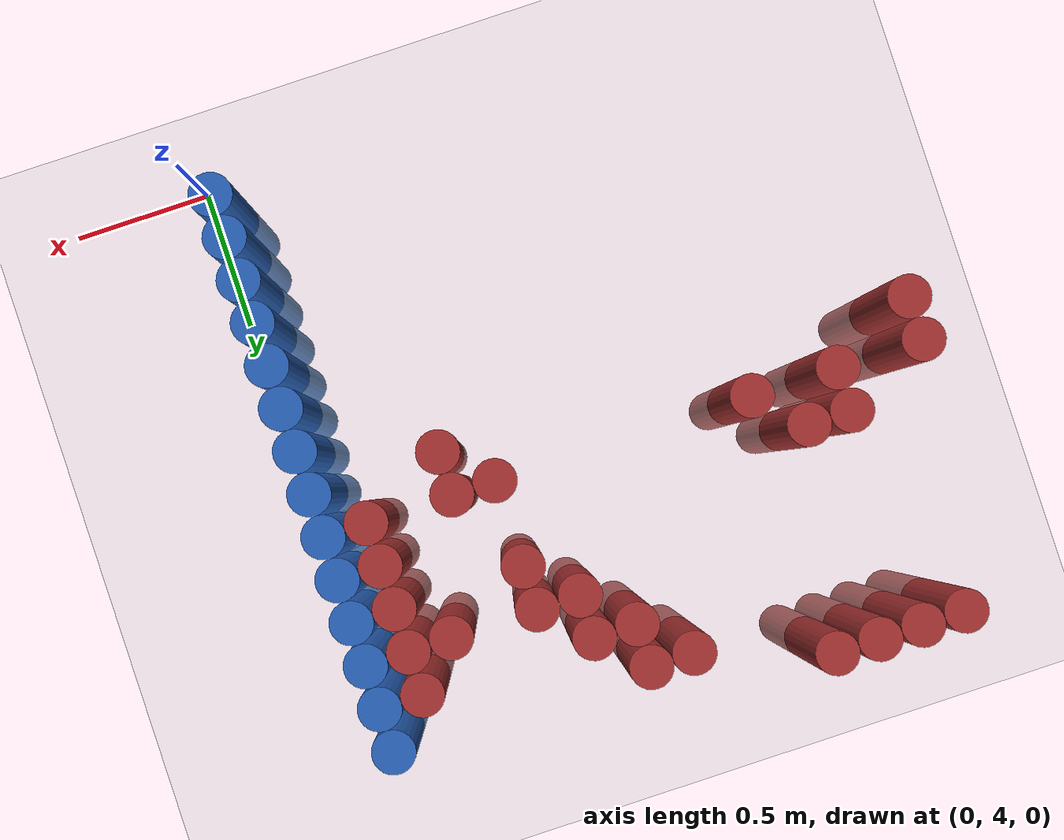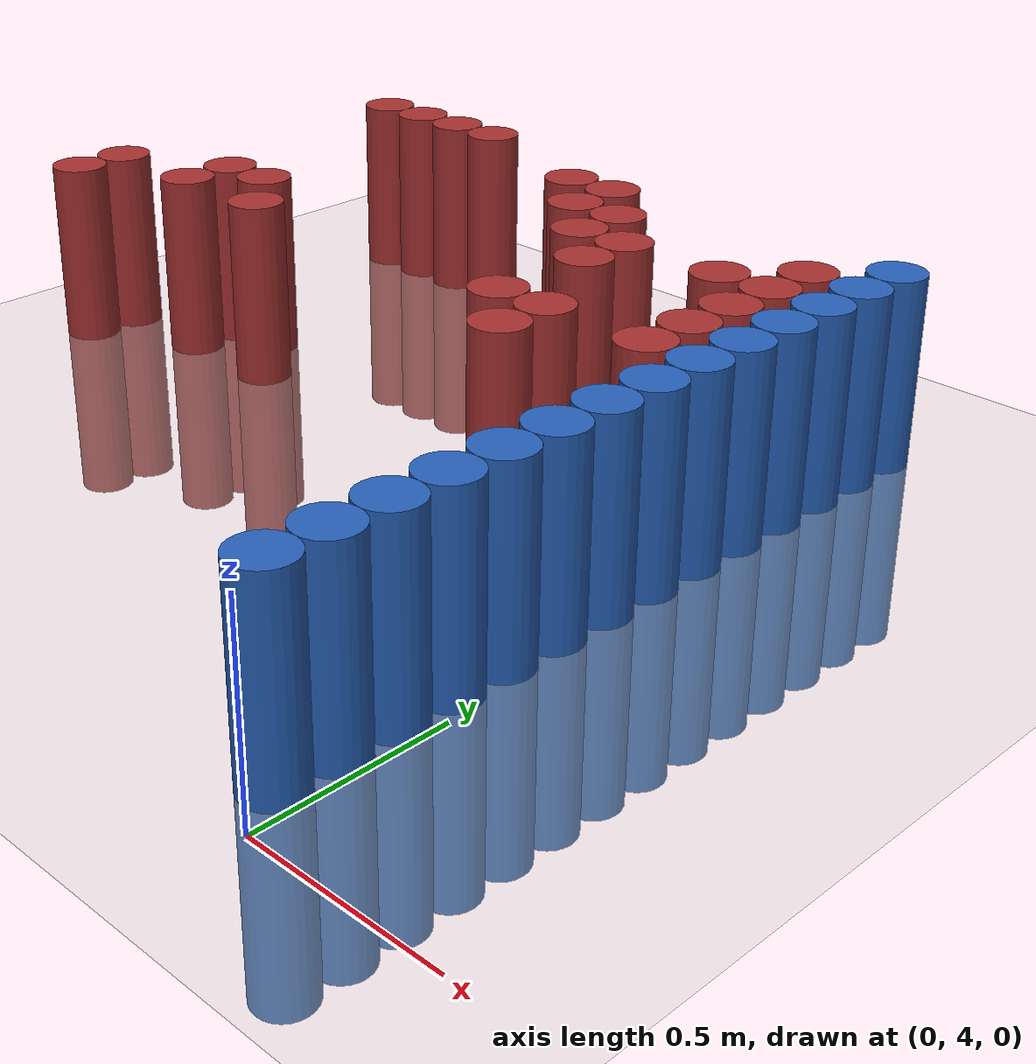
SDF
<sdf version="1.6">
 <world name="default">
  <model name="ground_plane">
   <static>1</static>
   <link name="link">
    <collision name="collision">
     <geometry><plane><normal>0 0 1</normal><size>100 100</size></plane></geometry>
     <surface><friction><ode><mu>100</mu><mu2>50</mu2></ode></friction></surface>
    </collision>
    <visual name="visual">
     <cast_shadows>0</cast_shadows>
     <geometry><plane><normal>0 0 1</normal><size>100 100</size></plane></geometry>
     <material>
      <script><uri>file://media/materials/scripts/gazebo.material</uri><name>Gazebo/Grey</name></script>
     </material>
    </visual>
   </link>
  </model>
  <model name="unit_cylinder_82">
   <static>1</static>
   <pose>-0.075000 4.125000 0.000000 0.000000 0.000000 0.000000</pose>
   <link name="link">
    <inertial>
     <mass>1</mass>
     <inertia><ixx>0.145833</ixx><ixy>0</ixy><ixz>0</ixz><iyy>0.145833</iyy><iyz>0</iyz><izz>0.125</izz></inertia>
    </inertial>
    <collision name="collision">
     <geometry><cylinder><radius>0.075000</radius><length>1</length></cylinder></geometry>
    </collision>
    <visual name="visual">
     <geometry><cylinder><radius>0.075000</radius><length>1</length></cylinder></geometry>
     <material>
      <ambient>0.152000 0.379000 0.720000 1</ambient>
      <diffuse>0.152000 0.379000 0.720000 1</diffuse>
     </material>
     <material>
      <script><name>Gazebo/Grey</name><uri>file://media/materials/scripts/gazebo.material</uri></script>
     </material>
    </visual>
    <sensor name="sensor_contact" type="contact"><contact><collision>collision</collision></contact></sensor>
   </link>
   <plugin filename="gz-sim-touchplugin-system" name="gz::sim::systems::TouchPlugin">
    <target>robot</target>
    <namespace>robot</namespace>
    <time>0.001</time>
    <enabled>true</enabled>
   </plugin>
  </model>
  <model name="unit_cylinder_84">
   <static>1</static>
   <pose>-0.075000 4.275000 0.000000 0.000000 0.000000 0.000000</pose>
   <link name="link">
    <inertial>
     <mass>1</mass>
     <inertia><ixx>0.145833</ixx><ixy>0</ixy><ixz>0</ixz><iyy>0.145833</iyy><iyz>0</iyz><izz>0.125</izz></inertia>
    </inertial>
    <collision name="collision">
     <geometry><cylinder><radius>0.075000</radius><length>1</length></cylinder></geometry>
    </collision>
    <visual name="visual">
     <geometry><cylinder><radius>0.075000</radius><length>1</length></cylinder></geometry>
     <material>
      <ambient>0.152000 0.379000 0.720000 1</ambient>
      <diffuse>0.152000 0.379000 0.720000 1</diffuse>
     </material>
     <material>
      <script><name>Gazebo/Grey</name><uri>file://media/materials/scripts/gazebo.material</uri></script>
     </material>
    </visual>
    <sensor name="sensor_contact" type="contact"><contact><collision>collision</collision></contact></sensor>
   </link>
   <plugin filename="gz-sim-touchplugin-system" name="gz::sim::systems::TouchPlugin">
    <target>robot</target>
    <namespace>robot</namespace>
    <time>0.001</time>
    <enabled>true</enabled>
   </plugin>
  </model>
  <model name="unit_cylinder_86">
   <static>1</static>
   <pose>-0.075000 4.425000 0.000000 0.000000 0.000000 0.000000</pose>
   <link name="link">
    <inertial>
     <mass>1</mass>
     <inertia><ixx>0.145833</ixx><ixy>0</ixy><ixz>0</ixz><iyy>0.145833</iyy><iyz>0</iyz><izz>0.125</izz></inertia>
    </inertial>
    <collision name="collision">
     <geometry><cylinder><radius>0.075000</radius><length>1</length></cylinder></geometry>
    </collision>
    <visual name="visual">
     <geometry><cylinder><radius>0.075000</radius><length>1</length></cylinder></geometry>
     <material>
      <ambient>0.152000 0.379000 0.720000 1</ambient>
      <diffuse>0.152000 0.379000 0.720000 1</diffuse>
     </material>
     <material>
      <script><name>Gazebo/Grey</name><uri>file://media/materials/scripts/gazebo.material</uri></script>
     </material>
    </visual>
    <sensor name="sensor_contact" type="contact"><contact><collision>collision</collision></contact></sensor>
   </link>
   <plugin filename="gz-sim-touchplugin-system" name="gz::sim::systems::TouchPlugin">
    <target>robot</target>
    <namespace>robot</namespace>
    <time>0.001</time>
    <enabled>true</enabled>
   </plugin>
  </model>
  <model name="unit_cylinder_88">
   <static>1</static>
   <pose>-0.075000 4.575000 0.000000 0.000000 0.000000 0.000000</pose>
   <link name="link">
    <inertial>
     <mass>1</mass>
     <inertia><ixx>0.145833</ixx><ixy>0</ixy><ixz>0</ixz><iyy>0.145833</iyy><iyz>0</iyz><izz>0.125</izz></inertia>
    </inertial>
    <collision name="collision">
     <geometry><cylinder><radius>0.075000</radius><length>1</length></cylinder></geometry>
    </collision>
    <visual name="visual">
     <geometry><cylinder><radius>0.075000</radius><length>1</length></cylinder></geometry>
     <material>
      <ambient>0.152000 0.379000 0.720000 1</ambient>
      <diffuse>0.152000 0.379000 0.720000 1</diffuse>
     </material>
     <material>
      <script><name>Gazebo/Grey</name><uri>file://media/materials/scripts/gazebo.material</uri></script>
     </material>
    </visual>
    <sensor name="sensor_contact" type="contact"><contact><collision>collision</collision></contact></sensor>
   </link>
   <plugin filename="gz-sim-touchplugin-system" name="gz::sim::systems::TouchPlugin">
    <target>robot</target>
    <namespace>robot</namespace>
    <time>0.001</time>
    <enabled>true</enabled>
   </plugin>
  </model>
  <model name="unit_cylinder_90">
   <static>1</static>
   <pose>-0.075000 4.725000 0.000000 0.000000 0.000000 0.000000</pose>
   <link name="link">
    <inertial>
     <mass>1</mass>
     <inertia><ixx>0.145833</ixx><ixy>0</ixy><ixz>0</ixz><iyy>0.145833</iyy><iyz>0</iyz><izz>0.125</izz></inertia>
    </inertial>
    <collision name="collision">
     <geometry><cylinder><radius>0.075000</radius><length>1</length></cylinder></geometry>
    </collision>
    <visual name="visual">
     <geometry><cylinder><radius>0.075000</radius><length>1</length></cylinder></geometry>
     <material>
      <ambient>0.152000 0.379000 0.720000 1</ambient>
      <diffuse>0.152000 0.379000 0.720000 1</diffuse>
     </material>
     <material>
      <script><name>Gazebo/Grey</name><uri>file://media/materials/scripts/gazebo.material</uri></script>
     </material>
    </visual>
    <sensor name="sensor_contact" type="contact"><contact><collision>collision</collision></contact></sensor>
   </link>
   <plugin filename="gz-sim-touchplugin-system" name="gz::sim::systems::TouchPlugin">
    <target>robot</target>
    <namespace>robot</namespace>
    <time>0.001</time>
    <enabled>true</enabled>
   </plugin>
  </model>
  <model name="unit_cylinder_92">
   <static>1</static>
   <pose>-0.075000 4.875000 0.000000 0.000000 0.000000 0.000000</pose>
   <link name="link">
    <inertial>
     <mass>1</mass>
     <inertia><ixx>0.145833</ixx><ixy>0</ixy><ixz>0</ixz><iyy>0.145833</iyy><iyz>0</iyz><izz>0.125</izz></inertia>
    </inertial>
    <collision name="collision">
     <geometry><cylinder><radius>0.075000</radius><length>1</length></cylinder></geometry>
    </collision>
    <visual name="visual">
     <geometry><cylinder><radius>0.075000</radius><length>1</length></cylinder></geometry>
     <material>
      <ambient>0.152000 0.379000 0.720000 1</ambient>
      <diffuse>0.152000 0.379000 0.720000 1</diffuse>
     </material>
     <material>
      <script><name>Gazebo/Grey</name><uri>file://media/materials/scripts/gazebo.material</uri></script>
     </material>
    </visual>
    <sensor name="sensor_contact" type="contact"><contact><collision>collision</collision></contact></sensor>
   </link>
   <plugin filename="gz-sim-touchplugin-system" name="gz::sim::systems::TouchPlugin">
    <target>robot</target>
    <namespace>robot</namespace>
    <time>0.001</time>
    <enabled>true</enabled>
   </plugin>
  </model>
  <model name="unit_cylinder_94">
   <static>1</static>
   <pose>-0.075000 5.025000 0.000000 0.000000 0.000000 0.000000</pose>
   <link name="link">
    <inertial>
     <mass>1</mass>
     <inertia><ixx>0.145833</ixx><ixy>0</ixy><ixz>0</ixz><iyy>0.145833</iyy><iyz>0</iyz><izz>0.125</izz></inertia>
    </inertial>
    <collision name="collision">
     <geometry><cylinder><radius>0.075000</radius><length>1</length></cylinder></geometry>
    </collision>
    <visual name="visual">
     <geometry><cylinder><radius>0.075000</radius><length>1</length></cylinder></geometry>
     <material>
      <ambient>0.152000 0.379000 0.720000 1</ambient>
      <diffuse>0.152000 0.379000 0.720000 1</diffuse>
     </material>
     <material>
      <script><name>Gazebo/Grey</name><uri>file://media/materials/scripts/gazebo.material</uri></script>
     </material>
    </visual>
    <sensor name="sensor_contact" type="contact"><contact><collision>collision</collision></contact></sensor>
   </link>
   <plugin filename="gz-sim-touchplugin-system" name="gz::sim::systems::TouchPlugin">
    <target>robot</target>
    <namespace>robot</namespace>
    <time>0.001</time>
    <enabled>true</enabled>
   </plugin>
  </model>
  <model name="unit_cylinder_207">
   <static>1</static>
   <pose>-2.175000 5.175000 0.000000 0.000000 0.000000 0.000000</pose>
   <link name="link">
    <inertial>
     <mass>1</mass>
     <inertia><ixx>0.145833</ixx><ixy>0</ixy><ixz>0</ixz><iyy>0.145833</iyy><iyz>0</iyz><izz>0.125</izz></inertia>
    </inertial>
    <collision name="collision">
     <geometry><cylinder><radius>0.075000</radius><length>1</length></cylinder></geometry>
    </collision>
    <visual name="visual">
     <geometry><cylinder><radius>0.075000</radius><length>1</length></cylinder></geometry>
     <material>
      <ambient>0.648000 0.192000 0.192000 1</ambient>
      <diffuse>0.648000 0.192000 0.192000 1</diffuse>
     </material>
     <material>
      <script><name>Gazebo/Grey</name><uri>file://media/materials/scripts/gazebo.material</uri></script>
     </material>
    </visual>
    <sensor name="sensor_contact" type="contact"><contact><collision>collision</collision></contact></sensor>
   </link>
   <plugin filename="gz-sim-touchplugin-system" name="gz::sim::systems::TouchPlugin">
    <target>robot</target>
    <namespace>robot</namespace>
    <time>0.001</time>
    <enabled>true</enabled>
   </plugin>
  </model>
  <model name="unit_cylinder_208">
   <static>1</static>
   <pose>-2.175000 5.325000 0.000000 0.000000 0.000000 0.000000</pose>
   <link name="link">
    <inertial>
     <mass>1</mass>
     <inertia><ixx>0.145833</ixx><ixy>0</ixy><ixz>0</ixz><iyy>0.145833</iyy><iyz>0</iyz><izz>0.125</izz></inertia>
    </inertial>
    <collision name="collision">
     <geometry><cylinder><radius>0.075000</radius><length>1</length></cylinder></geometry>
    </collision>
    <visual name="visual">
     <geometry><cylinder><radius>0.075000</radius><length>1</length></cylinder></geometry>
     <material>
      <ambient>0.648000 0.192000 0.192000 1</ambient>
      <diffuse>0.648000 0.192000 0.192000 1</diffuse>
     </material>
     <material>
      <script><name>Gazebo/Grey</name><uri>file://media/materials/scripts/gazebo.material</uri></script>
     </material>
    </visual>
    <sensor name="sensor_contact" type="contact"><contact><collision>collision</collision></contact></sensor>
   </link>
   <plugin filename="gz-sim-touchplugin-system" name="gz::sim::systems::TouchPlugin">
    <target>robot</target>
    <namespace>robot</namespace>
    <time>0.001</time>
    <enabled>true</enabled>
   </plugin>
  </model>
  <model name="unit_cylinder_211">
   <static>1</static>
   <pose>-2.025000 6.225000 0.000000 0.000000 0.000000 0.000000</pose>
   <link name="link">
    <inertial>
     <mass>1</mass>
     <inertia><ixx>0.145833</ixx><ixy>0</ixy><ixz>0</ixz><iyy>0.145833</iyy><iyz>0</iyz><izz>0.125</izz></inertia>
    </inertial>
    <collision name="collision">
     <geometry><cylinder><radius>0.075000</radius><length>1</length></cylinder></geometry>
    </collision>
    <visual name="visual">
     <geometry><cylinder><radius>0.075000</radius><length>1</length></cylinder></geometry>
     <material>
      <ambient>0.648000 0.192000 0.192000 1</ambient>
      <diffuse>0.648000 0.192000 0.192000 1</diffuse>
     </material>
     <material>
      <script><name>Gazebo/Grey</name><uri>file://media/materials/scripts/gazebo.material</uri></script>
     </material>
    </visual>
    <sensor name="sensor_contact" type="contact"><contact><collision>collision</collision></contact></sensor>
   </link>
   <plugin filename="gz-sim-touchplugin-system" name="gz::sim::systems::TouchPlugin">
    <target>robot</target>
    <namespace>robot</namespace>
    <time>0.001</time>
    <enabled>true</enabled>
   </plugin>
  </model>
  <model name="unit_cylinder_214">
   <static>1</static>
   <pose>-1.875000 5.325000 0.000000 0.000000 0.000000 0.000000</pose>
   <link name="link">
    <inertial>
     <mass>1</mass>
     <inertia><ixx>0.145833</ixx><ixy>0</ixy><ixz>0</ixz><iyy>0.145833</iyy><iyz>0</iyz><izz>0.125</izz></inertia>
    </inertial>
    <collision name="collision">
     <geometry><cylinder><radius>0.075000</radius><length>1</length></cylinder></geometry>
    </collision>
    <visual name="visual">
     <geometry><cylinder><radius>0.075000</radius><length>1</length></cylinder></geometry>
     <material>
      <ambient>0.648000 0.192000 0.192000 1</ambient>
      <diffuse>0.648000 0.192000 0.192000 1</diffuse>
     </material>
     <material>
      <script><name>Gazebo/Grey</name><uri>file://media/materials/scripts/gazebo.material</uri></script>
     </material>
    </visual>
    <sensor name="sensor_contact" type="contact"><contact><collision>collision</collision></contact></sensor>
   </link>
   <plugin filename="gz-sim-touchplugin-system" name="gz::sim::systems::TouchPlugin">
    <target>robot</target>
    <namespace>robot</namespace>
    <time>0.001</time>
    <enabled>true</enabled>
   </plugin>
  </model>
  <model name="unit_cylinder_215">
   <static>1</static>
   <pose>-1.875000 5.475000 0.000000 0.000000 0.000000 0.000000</pose>
   <link name="link">
    <inertial>
     <mass>1</mass>
     <inertia><ixx>0.145833</ixx><ixy>0</ixy><ixz>0</ixz><iyy>0.145833</iyy><iyz>0</iyz><izz>0.125</izz></inertia>
    </inertial>
    <collision name="collision">
     <geometry><cylinder><radius>0.075000</radius><length>1</length></cylinder></geometry>
    </collision>
    <visual name="visual">
     <geometry><cylinder><radius>0.075000</radius><length>1</length></cylinder></geometry>
     <material>
      <ambient>0.648000 0.192000 0.192000 1</ambient>
      <diffuse>0.648000 0.192000 0.192000 1</diffuse>
     </material>
     <material>
      <script><name>Gazebo/Grey</name><uri>file://media/materials/scripts/gazebo.material</uri></script>
     </material>
    </visual>
    <sensor name="sensor_contact" type="contact"><contact><collision>collision</collision></contact></sensor>
   </link>
   <plugin filename="gz-sim-touchplugin-system" name="gz::sim::systems::TouchPlugin">
    <target>robot</target>
    <namespace>robot</namespace>
    <time>0.001</time>
    <enabled>true</enabled>
   </plugin>
  </model>
  <model name="unit_cylinder_216">
   <static>1</static>
   <pose>-1.875000 6.225000 0.000000 0.000000 0.000000 0.000000</pose>
   <link name="link">
    <inertial>
     <mass>1</mass>
     <inertia><ixx>0.145833</ixx><ixy>0</ixy><ixz>0</ixz><iyy>0.145833</iyy><iyz>0</iyz><izz>0.125</izz></inertia>
    </inertial>
    <collision name="collision">
     <geometry><cylinder><radius>0.075000</radius><length>1</length></cylinder></geometry>
    </collision>
    <visual name="visual">
     <geometry><cylinder><radius>0.075000</radius><length>1</length></cylinder></geometry>
     <material>
      <ambient>0.648000 0.192000 0.192000 1</ambient>
      <diffuse>0.648000 0.192000 0.192000 1</diffuse>
     </material>
     <material>
      <script><name>Gazebo/Grey</name><uri>file://media/materials/scripts/gazebo.material</uri></script>
     </material>
    </visual>
    <sensor name="sensor_contact" type="contact"><contact><collision>collision</collision></contact></sensor>
   </link>
   <plugin filename="gz-sim-touchplugin-system" name="gz::sim::systems::TouchPlugin">
    <target>robot</target>
    <namespace>robot</namespace>
    <time>0.001</time>
    <enabled>true</enabled>
   </plugin>
  </model>
  <model name="unit_cylinder_219">
   <static>1</static>
   <pose>-1.725000 5.475000 0.000000 0.000000 0.000000 0.000000</pose>
   <link name="link">
    <inertial>
     <mass>1</mass>
     <inertia><ixx>0.145833</ixx><ixy>0</ixy><ixz>0</ixz><iyy>0.145833</iyy><iyz>0</iyz><izz>0.125</izz></inertia>
    </inertial>
    <collision name="collision">
     <geometry><cylinder><radius>0.075000</radius><length>1</length></cylinder></geometry>
    </collision>
    <visual name="visual">
     <geometry><cylinder><radius>0.075000</radius><length>1</length></cylinder></geometry>
     <material>
      <ambient>0.648000 0.192000 0.192000 1</ambient>
      <diffuse>0.648000 0.192000 0.192000 1</diffuse>
     </material>
     <material>
      <script><name>Gazebo/Grey</name><uri>file://media/materials/scripts/gazebo.material</uri></script>
     </material>
    </visual>
    <sensor name="sensor_contact" type="contact"><contact><collision>collision</collision></contact></sensor>
   </link>
   <plugin filename="gz-sim-touchplugin-system" name="gz::sim::systems::TouchPlugin">
    <target>robot</target>
    <namespace>robot</namespace>
    <time>0.001</time>
    <enabled>true</enabled>
   </plugin>
  </model>
  <model name="unit_cylinder_220">
   <static>1</static>
   <pose>-1.725000 6.225000 0.000000 0.000000 0.000000 0.000000</pose>
   <link name="link">
    <inertial>
     <mass>1</mass>
     <inertia><ixx>0.145833</ixx><ixy>0</ixy><ixz>0</ixz><iyy>0.145833</iyy><iyz>0</iyz><izz>0.125</izz></inertia>
    </inertial>
    <collision name="collision">
     <geometry><cylinder><radius>0.075000</radius><length>1</length></cylinder></geometry>
    </collision>
    <visual name="visual">
     <geometry><cylinder><radius>0.075000</radius><length>1</length></cylinder></geometry>
     <material>
      <ambient>0.648000 0.192000 0.192000 1</ambient>
      <diffuse>0.648000 0.192000 0.192000 1</diffuse>
     </material>
     <material>
      <script><name>Gazebo/Grey</name><uri>file://media/materials/scripts/gazebo.material</uri></script>
     </material>
    </visual>
    <sensor name="sensor_contact" type="contact"><contact><collision>collision</collision></contact></sensor>
   </link>
   <plugin filename="gz-sim-touchplugin-system" name="gz::sim::systems::TouchPlugin">
    <target>robot</target>
    <namespace>robot</namespace>
    <time>0.001</time>
    <enabled>true</enabled>
   </plugin>
  </model>
  <model name="unit_cylinder_224">
   <static>1</static>
   <pose>-1.575000 5.325000 0.000000 0.000000 0.000000 0.000000</pose>
   <link name="link">
    <inertial>
     <mass>1</mass>
     <inertia><ixx>0.145833</ixx><ixy>0</ixy><ixz>0</ixz><iyy>0.145833</iyy><iyz>0</iyz><izz>0.125</izz></inertia>
    </inertial>
    <collision name="collision">
     <geometry><cylinder><radius>0.075000</radius><length>1</length></cylinder></geometry>
    </collision>
    <visual name="visual">
     <geometry><cylinder><radius>0.075000</radius><length>1</length></cylinder></geometry>
     <material>
      <ambient>0.648000 0.192000 0.192000 1</ambient>
      <diffuse>0.648000 0.192000 0.192000 1</diffuse>
     </material>
     <material>
      <script><name>Gazebo/Grey</name><uri>file://media/materials/scripts/gazebo.material</uri></script>
     </material>
    </visual>
    <sensor name="sensor_contact" type="contact"><contact><collision>collision</collision></contact></sensor>
   </link>
   <plugin filename="gz-sim-touchplugin-system" name="gz::sim::systems::TouchPlugin">
    <target>robot</target>
    <namespace>robot</namespace>
    <time>0.001</time>
    <enabled>true</enabled>
   </plugin>
  </model>
  <model name="unit_cylinder_225">
   <static>1</static>
   <pose>-1.575000 6.225000 0.000000 0.000000 0.000000 0.000000</pose>
   <link name="link">
    <inertial>
     <mass>1</mass>
     <inertia><ixx>0.145833</ixx><ixy>0</ixy><ixz>0</ixz><iyy>0.145833</iyy><iyz>0</iyz><izz>0.125</izz></inertia>
    </inertial>
    <collision name="collision">
     <geometry><cylinder><radius>0.075000</radius><length>1</length></cylinder></geometry>
    </collision>
    <visual name="visual">
     <geometry><cylinder><radius>0.075000</radius><length>1</length></cylinder></geometry>
     <material>
      <ambient>0.648000 0.192000 0.192000 1</ambient>
      <diffuse>0.648000 0.192000 0.192000 1</diffuse>
     </material>
     <material>
      <script><name>Gazebo/Grey</name><uri>file://media/materials/scripts/gazebo.material</uri></script>
     </material>
    </visual>
    <sensor name="sensor_contact" type="contact"><contact><collision>collision</collision></contact></sensor>
   </link>
   <plugin filename="gz-sim-touchplugin-system" name="gz::sim::systems::TouchPlugin">
    <target>robot</target>
    <namespace>robot</namespace>
    <time>0.001</time>
    <enabled>true</enabled>
   </plugin>
  </model>
  <model name="unit_cylinder_237">
   <static>1</static>
   <pose>-1.125000 6.075000 0.000000 0.000000 0.000000 0.000000</pose>
   <link name="link">
    <inertial>
     <mass>1</mass>
     <inertia><ixx>0.145833</ixx><ixy>0</ixy><ixz>0</ixz><iyy>0.145833</iyy><iyz>0</iyz><izz>0.125</izz></inertia>
    </inertial>
    <collision name="collision">
     <geometry><cylinder><radius>0.075000</radius><length>1</length></cylinder></geometry>
    </collision>
    <visual name="visual">
     <geometry><cylinder><radius>0.075000</radius><length>1</length></cylinder></geometry>
     <material>
      <ambient>0.648000 0.192000 0.192000 1</ambient>
      <diffuse>0.648000 0.192000 0.192000 1</diffuse>
     </material>
     <material>
      <script><name>Gazebo/Grey</name><uri>file://media/materials/scripts/gazebo.material</uri></script>
     </material>
    </visual>
    <sensor name="sensor_contact" type="contact"><contact><collision>collision</collision></contact></sensor>
   </link>
   <plugin filename="gz-sim-touchplugin-system" name="gz::sim::systems::TouchPlugin">
    <target>robot</target>
    <namespace>robot</namespace>
    <time>0.001</time>
    <enabled>true</enabled>
   </plugin>
  </model>
  <model name="unit_cylinder_245">
   <static>1</static>
   <pose>-0.975000 5.925000 0.000000 0.000000 0.000000 0.000000</pose>
   <link name="link">
    <inertial>
     <mass>1</mass>
     <inertia><ixx>0.145833</ixx><ixy>0</ixy><ixz>0</ixz><iyy>0.145833</iyy><iyz>0</iyz><izz>0.125</izz></inertia>
    </inertial>
    <collision name="collision">
     <geometry><cylinder><radius>0.075000</radius><length>1</length></cylinder></geometry>
    </collision>
    <visual name="visual">
     <geometry><cylinder><radius>0.075000</radius><length>1</length></cylinder></geometry>
     <material>
      <ambient>0.648000 0.192000 0.192000 1</ambient>
      <diffuse>0.648000 0.192000 0.192000 1</diffuse>
     </material>
     <material>
      <script><name>Gazebo/Grey</name><uri>file://media/materials/scripts/gazebo.material</uri></script>
     </material>
    </visual>
    <sensor name="sensor_contact" type="contact"><contact><collision>collision</collision></contact></sensor>
   </link>
   <plugin filename="gz-sim-touchplugin-system" name="gz::sim::systems::TouchPlugin">
    <target>robot</target>
    <namespace>robot</namespace>
    <time>0.001</time>
    <enabled>true</enabled>
   </plugin>
  </model>
  <model name="unit_cylinder_246">
   <static>1</static>
   <pose>-0.975000 6.075000 0.000000 0.000000 0.000000 0.000000</pose>
   <link name="link">
    <inertial>
     <mass>1</mass>
     <inertia><ixx>0.145833</ixx><ixy>0</ixy><ixz>0</ixz><iyy>0.145833</iyy><iyz>0</iyz><izz>0.125</izz></inertia>
    </inertial>
    <collision name="collision">
     <geometry><cylinder><radius>0.075000</radius><length>1</length></cylinder></geometry>
    </collision>
    <visual name="visual">
     <geometry><cylinder><radius>0.075000</radius><length>1</length></cylinder></geometry>
     <material>
      <ambient>0.648000 0.192000 0.192000 1</ambient>
      <diffuse>0.648000 0.192000 0.192000 1</diffuse>
     </material>
     <material>
      <script><name>Gazebo/Grey</name><uri>file://media/materials/scripts/gazebo.material</uri></script>
     </material>
    </visual>
    <sensor name="sensor_contact" type="contact"><contact><collision>collision</collision></contact></sensor>
   </link>
   <plugin filename="gz-sim-touchplugin-system" name="gz::sim::systems::TouchPlugin">
    <target>robot</target>
    <namespace>robot</namespace>
    <time>0.001</time>
    <enabled>true</enabled>
   </plugin>
  </model>
  <model name="unit_cylinder_255">
   <static>1</static>
   <pose>-0.825000 5.775000 0.000000 0.000000 0.000000 0.000000</pose>
   <link name="link">
    <inertial>
     <mass>1</mass>
     <inertia><ixx>0.145833</ixx><ixy>0</ixy><ixz>0</ixz><iyy>0.145833</iyy><iyz>0</iyz><izz>0.125</izz></inertia>
    </inertial>
    <collision name="collision">
     <geometry><cylinder><radius>0.075000</radius><length>1</length></cylinder></geometry>
    </collision>
    <visual name="visual">
     <geometry><cylinder><radius>0.075000</radius><length>1</length></cylinder></geometry>
     <material>
      <ambient>0.648000 0.192000 0.192000 1</ambient>
      <diffuse>0.648000 0.192000 0.192000 1</diffuse>
     </material>
     <material>
      <script><name>Gazebo/Grey</name><uri>file://media/materials/scripts/gazebo.material</uri></script>
     </material>
    </visual>
    <sensor name="sensor_contact" type="contact"><contact><collision>collision</collision></contact></sensor>
   </link>
   <plugin filename="gz-sim-touchplugin-system" name="gz::sim::systems::TouchPlugin">
    <target>robot</target>
    <namespace>robot</namespace>
    <time>0.001</time>
    <enabled>true</enabled>
   </plugin>
  </model>
  <model name="unit_cylinder_256">
   <static>1</static>
   <pose>-0.825000 5.925000 0.000000 0.000000 0.000000 0.000000</pose>
   <link name="link">
    <inertial>
     <mass>1</mass>
     <inertia><ixx>0.145833</ixx><ixy>0</ixy><ixz>0</ixz><iyy>0.145833</iyy><iyz>0</iyz><izz>0.125</izz></inertia>
    </inertial>
    <collision name="collision">
     <geometry><cylinder><radius>0.075000</radius><length>1</length></cylinder></geometry>
    </collision>
    <visual name="visual">
     <geometry><cylinder><radius>0.075000</radius><length>1</length></cylinder></geometry>
     <material>
      <ambient>0.648000 0.192000 0.192000 1</ambient>
      <diffuse>0.648000 0.192000 0.192000 1</diffuse>
     </material>
     <material>
      <script><name>Gazebo/Grey</name><uri>file://media/materials/scripts/gazebo.material</uri></script>
     </material>
    </visual>
    <sensor name="sensor_contact" type="contact"><contact><collision>collision</collision></contact></sensor>
   </link>
   <plugin filename="gz-sim-touchplugin-system" name="gz::sim::systems::TouchPlugin">
    <target>robot</target>
    <namespace>robot</namespace>
    <time>0.001</time>
    <enabled>true</enabled>
   </plugin>
  </model>
  <model name="unit_cylinder_261">
   <static>1</static>
   <pose>-0.675000 5.325000 0.000000 0.000000 0.000000 0.000000</pose>
   <link name="link">
    <inertial>
     <mass>1</mass>
     <inertia><ixx>0.145833</ixx><ixy>0</ixy><ixz>0</ixz><iyy>0.145833</iyy><iyz>0</iyz><izz>0.125</izz></inertia>
    </inertial>
    <collision name="collision">
     <geometry><cylinder><radius>0.075000</radius><length>1</length></cylinder></geometry>
    </collision>
    <visual name="visual">
     <geometry><cylinder><radius>0.075000</radius><length>1</length></cylinder></geometry>
     <material>
      <ambient>0.648000 0.192000 0.192000 1</ambient>
      <diffuse>0.648000 0.192000 0.192000 1</diffuse>
     </material>
     <material>
      <script><name>Gazebo/Grey</name><uri>file://media/materials/scripts/gazebo.material</uri></script>
     </material>
    </visual>
    <sensor name="sensor_contact" type="contact"><contact><collision>collision</collision></contact></sensor>
   </link>
   <plugin filename="gz-sim-touchplugin-system" name="gz::sim::systems::TouchPlugin">
    <target>robot</target>
    <namespace>robot</namespace>
    <time>0.001</time>
    <enabled>true</enabled>
   </plugin>
  </model>
  <model name="unit_cylinder_262">
   <static>1</static>
   <pose>-0.675000 5.625000 0.000000 0.000000 0.000000 0.000000</pose>
   <link name="link">
    <inertial>
     <mass>1</mass>
     <inertia><ixx>0.145833</ixx><ixy>0</ixy><ixz>0</ixz><iyy>0.145833</iyy><iyz>0</iyz><izz>0.125</izz></inertia>
    </inertial>
    <collision name="collision">
     <geometry><cylinder><radius>0.075000</radius><length>1</length></cylinder></geometry>
    </collision>
    <visual name="visual">
     <geometry><cylinder><radius>0.075000</radius><length>1</length></cylinder></geometry>
     <material>
      <ambient>0.648000 0.192000 0.192000 1</ambient>
      <diffuse>0.648000 0.192000 0.192000 1</diffuse>
     </material>
     <material>
      <script><name>Gazebo/Grey</name><uri>file://media/materials/scripts/gazebo.material</uri></script>
     </material>
    </visual>
    <sensor name="sensor_contact" type="contact"><contact><collision>collision</collision></contact></sensor>
   </link>
   <plugin filename="gz-sim-touchplugin-system" name="gz::sim::systems::TouchPlugin">
    <target>robot</target>
    <namespace>robot</namespace>
    <time>0.001</time>
    <enabled>true</enabled>
   </plugin>
  </model>
  <model name="unit_cylinder_263">
   <static>1</static>
   <pose>-0.675000 5.775000 0.000000 0.000000 0.000000 0.000000</pose>
   <link name="link">
    <inertial>
     <mass>1</mass>
     <inertia><ixx>0.145833</ixx><ixy>0</ixy><ixz>0</ixz><iyy>0.145833</iyy><iyz>0</iyz><izz>0.125</izz></inertia>
    </inertial>
    <collision name="collision">
     <geometry><cylinder><radius>0.075000</radius><length>1</length></cylinder></geometry>
    </collision>
    <visual name="visual">
     <geometry><cylinder><radius>0.075000</radius><length>1</length></cylinder></geometry>
     <material>
      <ambient>0.648000 0.192000 0.192000 1</ambient>
      <diffuse>0.648000 0.192000 0.192000 1</diffuse>
     </material>
     <material>
      <script><name>Gazebo/Grey</name><uri>file://media/materials/scripts/gazebo.material</uri></script>
     </material>
    </visual>
    <sensor name="sensor_contact" type="contact"><contact><collision>collision</collision></contact></sensor>
   </link>
   <plugin filename="gz-sim-touchplugin-system" name="gz::sim::systems::TouchPlugin">
    <target>robot</target>
    <namespace>robot</namespace>
    <time>0.001</time>
    <enabled>true</enabled>
   </plugin>
  </model>
  <model name="unit_cylinder_266">
   <static>1</static>
   <pose>-0.525000 5.175000 0.000000 0.000000 0.000000 0.000000</pose>
   <link name="link">
    <inertial>
     <mass>1</mass>
     <inertia><ixx>0.145833</ixx><ixy>0</ixy><ixz>0</ixz><iyy>0.145833</iyy><iyz>0</iyz><izz>0.125</izz></inertia>
    </inertial>
    <collision name="collision">
     <geometry><cylinder><radius>0.075000</radius><length>1</length></cylinder></geometry>
    </collision>
    <visual name="visual">
     <geometry><cylinder><radius>0.075000</radius><length>1</length></cylinder></geometry>
     <material>
      <ambient>0.648000 0.192000 0.192000 1</ambient>
      <diffuse>0.648000 0.192000 0.192000 1</diffuse>
     </material>
     <material>
      <script><name>Gazebo/Grey</name><uri>file://media/materials/scripts/gazebo.material</uri></script>
     </material>
    </visual>
    <sensor name="sensor_contact" type="contact"><contact><collision>collision</collision></contact></sensor>
   </link>
   <plugin filename="gz-sim-touchplugin-system" name="gz::sim::systems::TouchPlugin">
    <target>robot</target>
    <namespace>robot</namespace>
    <time>0.001</time>
    <enabled>true</enabled>
   </plugin>
  </model>
  <model name="unit_cylinder_267">
   <static>1</static>
   <pose>-0.525000 5.325000 0.000000 0.000000 0.000000 0.000000</pose>
   <link name="link">
    <inertial>
     <mass>1</mass>
     <inertia><ixx>0.145833</ixx><ixy>0</ixy><ixz>0</ixz><iyy>0.145833</iyy><iyz>0</iyz><izz>0.125</izz></inertia>
    </inertial>
    <collision name="collision">
     <geometry><cylinder><radius>0.075000</radius><length>1</length></cylinder></geometry>
    </collision>
    <visual name="visual">
     <geometry><cylinder><radius>0.075000</radius><length>1</length></cylinder></geometry>
     <material>
      <ambient>0.648000 0.192000 0.192000 1</ambient>
      <diffuse>0.648000 0.192000 0.192000 1</diffuse>
     </material>
     <material>
      <script><name>Gazebo/Grey</name><uri>file://media/materials/scripts/gazebo.material</uri></script>
     </material>
    </visual>
    <sensor name="sensor_contact" type="contact"><contact><collision>collision</collision></contact></sensor>
   </link>
   <plugin filename="gz-sim-touchplugin-system" name="gz::sim::systems::TouchPlugin">
    <target>robot</target>
    <namespace>robot</namespace>
    <time>0.001</time>
    <enabled>true</enabled>
   </plugin>
  </model>
  <model name="unit_cylinder_268">
   <static>1</static>
   <pose>-0.375000 5.775000 0.000000 0.000000 0.000000 0.000000</pose>
   <link name="link">
    <inertial>
     <mass>1</mass>
     <inertia><ixx>0.145833</ixx><ixy>0</ixy><ixz>0</ixz><iyy>0.145833</iyy><iyz>0</iyz><izz>0.125</izz></inertia>
    </inertial>
    <collision name="collision">
     <geometry><cylinder><radius>0.075000</radius><length>1</length></cylinder></geometry>
    </collision>
    <visual name="visual">
     <geometry><cylinder><radius>0.075000</radius><length>1</length></cylinder></geometry>
     <material>
      <ambient>0.648000 0.192000 0.192000 1</ambient>
      <diffuse>0.648000 0.192000 0.192000 1</diffuse>
     </material>
     <material>
      <script><name>Gazebo/Grey</name><uri>file://media/materials/scripts/gazebo.material</uri></script>
     </material>
    </visual>
    <sensor name="sensor_contact" type="contact"><contact><collision>collision</collision></contact></sensor>
   </link>
   <plugin filename="gz-sim-touchplugin-system" name="gz::sim::systems::TouchPlugin">
    <target>robot</target>
    <namespace>robot</namespace>
    <time>0.001</time>
    <enabled>true</enabled>
   </plugin>
  </model>
  <model name="unit_cylinder_273">
   <static>1</static>
   <pose>-0.225000 5.325000 0.000000 0.000000 0.000000 0.000000</pose>
   <link name="link">
    <inertial>
     <mass>1</mass>
     <inertia><ixx>0.145833</ixx><ixy>0</ixy><ixz>0</ixz><iyy>0.145833</iyy><iyz>0</iyz><izz>0.125</izz></inertia>
    </inertial>
    <collision name="collision">
     <geometry><cylinder><radius>0.075000</radius><length>1</length></cylinder></geometry>
    </collision>
    <visual name="visual">
     <geometry><cylinder><radius>0.075000</radius><length>1</length></cylinder></geometry>
     <material>
      <ambient>0.648000 0.192000 0.192000 1</ambient>
      <diffuse>0.648000 0.192000 0.192000 1</diffuse>
     </material>
     <material>
      <script><name>Gazebo/Grey</name><uri>file://media/materials/scripts/gazebo.material</uri></script>
     </material>
    </visual>
    <sensor name="sensor_contact" type="contact"><contact><collision>collision</collision></contact></sensor>
   </link>
   <plugin filename="gz-sim-touchplugin-system" name="gz::sim::systems::TouchPlugin">
    <target>robot</target>
    <namespace>robot</namespace>
    <time>0.001</time>
    <enabled>true</enabled>
   </plugin>
  </model>
  <model name="unit_cylinder_274">
   <static>1</static>
   <pose>-0.225000 5.475000 0.000000 0.000000 0.000000 0.000000</pose>
   <link name="link">
    <inertial>
     <mass>1</mass>
     <inertia><ixx>0.145833</ixx><ixy>0</ixy><ixz>0</ixz><iyy>0.145833</iyy><iyz>0</iyz><izz>0.125</izz></inertia>
    </inertial>
    <collision name="collision">
     <geometry><cylinder><radius>0.075000</radius><length>1</length></cylinder></geometry>
    </collision>
    <visual name="visual">
     <geometry><cylinder><radius>0.075000</radius><length>1</length></cylinder></geometry>
     <material>
      <ambient>0.648000 0.192000 0.192000 1</ambient>
      <diffuse>0.648000 0.192000 0.192000 1</diffuse>
     </material>
     <material>
      <script><name>Gazebo/Grey</name><uri>file://media/materials/scripts/gazebo.material</uri></script>
     </material>
    </visual>
    <sensor name="sensor_contact" type="contact"><contact><collision>collision</collision></contact></sensor>
   </link>
   <plugin filename="gz-sim-touchplugin-system" name="gz::sim::systems::TouchPlugin">
    <target>robot</target>
    <namespace>robot</namespace>
    <time>0.001</time>
    <enabled>true</enabled>
   </plugin>
  </model>
  <model name="unit_cylinder_275">
   <static>1</static>
   <pose>-0.225000 5.625000 0.000000 0.000000 0.000000 0.000000</pose>
   <link name="link">
    <inertial>
     <mass>1</mass>
     <inertia><ixx>0.145833</ixx><ixy>0</ixy><ixz>0</ixz><iyy>0.145833</iyy><iyz>0</iyz><izz>0.125</izz></inertia>
    </inertial>
    <collision name="collision">
     <geometry><cylinder><radius>0.075000</radius><length>1</length></cylinder></geometry>
    </collision>
    <visual name="visual">
     <geometry><cylinder><radius>0.075000</radius><length>1</length></cylinder></geometry>
     <material>
      <ambient>0.648000 0.192000 0.192000 1</ambient>
      <diffuse>0.648000 0.192000 0.192000 1</diffuse>
     </material>
     <material>
      <script><name>Gazebo/Grey</name><uri>file://media/materials/scripts/gazebo.material</uri></script>
     </material>
    </visual>
    <sensor name="sensor_contact" type="contact"><contact><collision>collision</collision></contact></sensor>
   </link>
   <plugin filename="gz-sim-touchplugin-system" name="gz::sim::systems::TouchPlugin">
    <target>robot</target>
    <namespace>robot</namespace>
    <time>0.001</time>
    <enabled>true</enabled>
   </plugin>
  </model>
  <model name="unit_cylinder_276">
   <static>1</static>
   <pose>-0.225000 5.775000 0.000000 0.000000 0.000000 0.000000</pose>
   <link name="link">
    <inertial>
     <mass>1</mass>
     <inertia><ixx>0.145833</ixx><ixy>0</ixy><ixz>0</ixz><iyy>0.145833</iyy><iyz>0</iyz><izz>0.125</izz></inertia>
    </inertial>
    <collision name="collision">
     <geometry><cylinder><radius>0.075000</radius><length>1</length></cylinder></geometry>
    </collision>
    <visual name="visual">
     <geometry><cylinder><radius>0.075000</radius><length>1</length></cylinder></geometry>
     <material>
      <ambient>0.648000 0.192000 0.192000 1</ambient>
      <diffuse>0.648000 0.192000 0.192000 1</diffuse>
     </material>
     <material>
      <script><name>Gazebo/Grey</name><uri>file://media/materials/scripts/gazebo.material</uri></script>
     </material>
    </visual>
    <sensor name="sensor_contact" type="contact"><contact><collision>collision</collision></contact></sensor>
   </link>
   <plugin filename="gz-sim-touchplugin-system" name="gz::sim::systems::TouchPlugin">
    <target>robot</target>
    <namespace>robot</namespace>
    <time>0.001</time>
    <enabled>true</enabled>
   </plugin>
  </model>
  <model name="unit_cylinder_277">
   <static>1</static>
   <pose>-0.225000 5.925000 0.000000 0.000000 0.000000 0.000000</pose>
   <link name="link">
    <inertial>
     <mass>1</mass>
     <inertia><ixx>0.145833</ixx><ixy>0</ixy><ixz>0</ixz><iyy>0.145833</iyy><iyz>0</iyz><izz>0.125</izz></inertia>
    </inertial>
    <collision name="collision">
     <geometry><cylinder><radius>0.075000</radius><length>1</length></cylinder></geometry>
    </collision>
    <visual name="visual">
     <geometry><cylinder><radius>0.075000</radius><length>1</length></cylinder></geometry>
     <material>
      <ambient>0.648000 0.192000 0.192000 1</ambient>
      <diffuse>0.648000 0.192000 0.192000 1</diffuse>
     </material>
     <material>
      <script><name>Gazebo/Grey</name><uri>file://media/materials/scripts/gazebo.material</uri></script>
     </material>
    </visual>
    <sensor name="sensor_contact" type="contact"><contact><collision>collision</collision></contact></sensor>
   </link>
   <plugin filename="gz-sim-touchplugin-system" name="gz::sim::systems::TouchPlugin">
    <target>robot</target>
    <namespace>robot</namespace>
    <time>0.001</time>
    <enabled>true</enabled>
   </plugin>
  </model>
  <model name="unit_cylinder_291">
   <static>1</static>
   <pose>-0.075000 5.175000 0.000000 0.000000 0.000000 0.000000</pose>
   <link name="link">
    <inertial>
     <mass>1</mass>
     <inertia><ixx>0.145833</ixx><ixy>0</ixy><ixz>0</ixz><iyy>0.145833</iyy><iyz>0</iyz><izz>0.125</izz></inertia>
    </inertial>
    <collision name="collision">
     <geometry><cylinder><radius>0.075000</radius><length>1</length></cylinder></geometry>
    </collision>
    <visual name="visual">
     <geometry><cylinder><radius>0.075000</radius><length>1</length></cylinder></geometry>
     <material>
      <ambient>0.152000 0.379000 0.720000 1</ambient>
      <diffuse>0.152000 0.379000 0.720000 1</diffuse>
     </material>
     <material>
      <script><name>Gazebo/Grey</name><uri>file://media/materials/scripts/gazebo.material</uri></script>
     </material>
    </visual>
    <sensor name="sensor_contact" type="contact"><contact><collision>collision</collision></contact></sensor>
   </link>
   <plugin filename="gz-sim-touchplugin-system" name="gz::sim::systems::TouchPlugin">
    <target>robot</target>
    <namespace>robot</namespace>
    <time>0.001</time>
    <enabled>true</enabled>
   </plugin>
  </model>
  <model name="unit_cylinder_292">
   <static>1</static>
   <pose>-0.075000 5.325000 0.000000 0.000000 0.000000 0.000000</pose>
   <link name="link">
    <inertial>
     <mass>1</mass>
     <inertia><ixx>0.145833</ixx><ixy>0</ixy><ixz>0</ixz><iyy>0.145833</iyy><iyz>0</iyz><izz>0.125</izz></inertia>
    </inertial>
    <collision name="collision">
     <geometry><cylinder><radius>0.075000</radius><length>1</length></cylinder></geometry>
    </collision>
    <visual name="visual">
     <geometry><cylinder><radius>0.075000</radius><length>1</length></cylinder></geometry>
     <material>
      <ambient>0.152000 0.379000 0.720000 1</ambient>
      <diffuse>0.152000 0.379000 0.720000 1</diffuse>
     </material>
     <material>
      <script><name>Gazebo/Grey</name><uri>file://media/materials/scripts/gazebo.material</uri></script>
     </material>
    </visual>
    <sensor name="sensor_contact" type="contact"><contact><collision>collision</collision></contact></sensor>
   </link>
   <plugin filename="gz-sim-touchplugin-system" name="gz::sim::systems::TouchPlugin">
    <target>robot</target>
    <namespace>robot</namespace>
    <time>0.001</time>
    <enabled>true</enabled>
   </plugin>
  </model>
  <model name="unit_cylinder_293">
   <static>1</static>
   <pose>-0.075000 5.475000 0.000000 0.000000 0.000000 0.000000</pose>
   <link name="link">
    <inertial>
     <mass>1</mass>
     <inertia><ixx>0.145833</ixx><ixy>0</ixy><ixz>0</ixz><iyy>0.145833</iyy><iyz>0</iyz><izz>0.125</izz></inertia>
    </inertial>
    <collision name="collision">
     <geometry><cylinder><radius>0.075000</radius><length>1</length></cylinder></geometry>
    </collision>
    <visual name="visual">
     <geometry><cylinder><radius>0.075000</radius><length>1</length></cylinder></geometry>
     <material>
      <ambient>0.152000 0.379000 0.720000 1</ambient>
      <diffuse>0.152000 0.379000 0.720000 1</diffuse>
     </material>
     <material>
      <script><name>Gazebo/Grey</name><uri>file://media/materials/scripts/gazebo.material</uri></script>
     </material>
    </visual>
    <sensor name="sensor_contact" type="contact"><contact><collision>collision</collision></contact></sensor>
   </link>
   <plugin filename="gz-sim-touchplugin-system" name="gz::sim::systems::TouchPlugin">
    <target>robot</target>
    <namespace>robot</namespace>
    <time>0.001</time>
    <enabled>true</enabled>
   </plugin>
  </model>
  <model name="unit_cylinder_294">
   <static>1</static>
   <pose>-0.075000 5.625000 0.000000 0.000000 0.000000 0.000000</pose>
   <link name="link">
    <inertial>
     <mass>1</mass>
     <inertia><ixx>0.145833</ixx><ixy>0</ixy><ixz>0</ixz><iyy>0.145833</iyy><iyz>0</iyz><izz>0.125</izz></inertia>
    </inertial>
    <collision name="collision">
     <geometry><cylinder><radius>0.075000</radius><length>1</length></cylinder></geometry>
    </collision>
    <visual name="visual">
     <geometry><cylinder><radius>0.075000</radius><length>1</length></cylinder></geometry>
     <material>
      <ambient>0.152000 0.379000 0.720000 1</ambient>
      <diffuse>0.152000 0.379000 0.720000 1</diffuse>
     </material>
     <material>
      <script><name>Gazebo/Grey</name><uri>file://media/materials/scripts/gazebo.material</uri></script>
     </material>
    </visual>
    <sensor name="sensor_contact" type="contact"><contact><collision>collision</collision></contact></sensor>
   </link>
   <plugin filename="gz-sim-touchplugin-system" name="gz::sim::systems::TouchPlugin">
    <target>robot</target>
    <namespace>robot</namespace>
    <time>0.001</time>
    <enabled>true</enabled>
   </plugin>
  </model>
  <model name="unit_cylinder_295">
   <static>1</static>
   <pose>-0.075000 5.775000 0.000000 0.000000 0.000000 0.000000</pose>
   <link name="link">
    <inertial>
     <mass>1</mass>
     <inertia><ixx>0.145833</ixx><ixy>0</ixy><ixz>0</ixz><iyy>0.145833</iyy><iyz>0</iyz><izz>0.125</izz></inertia>
    </inertial>
    <collision name="collision">
     <geometry><cylinder><radius>0.075000</radius><length>1</length></cylinder></geometry>
    </collision>
    <visual name="visual">
     <geometry><cylinder><radius>0.075000</radius><length>1</length></cylinder></geometry>
     <material>
      <ambient>0.152000 0.379000 0.720000 1</ambient>
      <diffuse>0.152000 0.379000 0.720000 1</diffuse>
     </material>
     <material>
      <script><name>Gazebo/Grey</name><uri>file://media/materials/scripts/gazebo.material</uri></script>
     </material>
    </visual>
    <sensor name="sensor_contact" type="contact"><contact><collision>collision</collision></contact></sensor>
   </link>
   <plugin filename="gz-sim-touchplugin-system" name="gz::sim::systems::TouchPlugin">
    <target>robot</target>
    <namespace>robot</namespace>
    <time>0.001</time>
    <enabled>true</enabled>
   </plugin>
  </model>
  <model name="unit_cylinder_296">
   <static>1</static>
   <pose>-0.075000 5.925000 0.000000 0.000000 0.000000 0.000000</pose>
   <link name="link">
    <inertial>
     <mass>1</mass>
     <inertia><ixx>0.145833</ixx><ixy>0</ixy><ixz>0</ixz><iyy>0.145833</iyy><iyz>0</iyz><izz>0.125</izz></inertia>
    </inertial>
    <collision name="collision">
     <geometry><cylinder><radius>0.075000</radius><length>1</length></cylinder></geometry>
    </collision>
    <visual name="visual">
     <geometry><cylinder><radius>0.075000</radius><length>1</length></cylinder></geometry>
     <material>
      <ambient>0.152000 0.379000 0.720000 1</ambient>
      <diffuse>0.152000 0.379000 0.720000 1</diffuse>
     </material>
     <material>
      <script><name>Gazebo/Grey</name><uri>file://media/materials/scripts/gazebo.material</uri></script>
     </material>
    </visual>
    <sensor name="sensor_contact" type="contact"><contact><collision>collision</collision></contact></sensor>
   </link>
   <plugin filename="gz-sim-touchplugin-system" name="gz::sim::systems::TouchPlugin">
    <target>robot</target>
    <namespace>robot</namespace>
    <time>0.001</time>
    <enabled>true</enabled>
   </plugin>
  </model>
  <model name="unit_cylinder_297">
   <static>1</static>
   <pose>-0.075000 6.075000 0.000000 0.000000 0.000000 0.000000</pose>
   <link name="link">
    <inertial>
     <mass>1</mass>
     <inertia><ixx>0.145833</ixx><ixy>0</ixy><ixz>0</ixz><iyy>0.145833</iyy><iyz>0</iyz><izz>0.125</izz></inertia>
    </inertial>
    <collision name="collision">
     <geometry><cylinder><radius>0.075000</radius><length>1</length></cylinder></geometry>
    </collision>
    <visual name="visual">
     <geometry><cylinder><radius>0.075000</radius><length>1</length></cylinder></geometry>
     <material>
      <ambient>0.152000 0.379000 0.720000 1</ambient>
      <diffuse>0.152000 0.379000 0.720000 1</diffuse>
     </material>
     <material>
      <script><name>Gazebo/Grey</name><uri>file://media/materials/scripts/gazebo.material</uri></script>
     </material>
    </visual>
    <sensor name="sensor_contact" type="contact"><contact><collision>collision</collision></contact></sensor>
   </link>
   <plugin filename="gz-sim-touchplugin-system" name="gz::sim::systems::TouchPlugin">
    <target>robot</target>
    <namespace>robot</namespace>
    <time>0.001</time>
    <enabled>true</enabled>
   </plugin>
  </model>
 </world>
</sdf>
